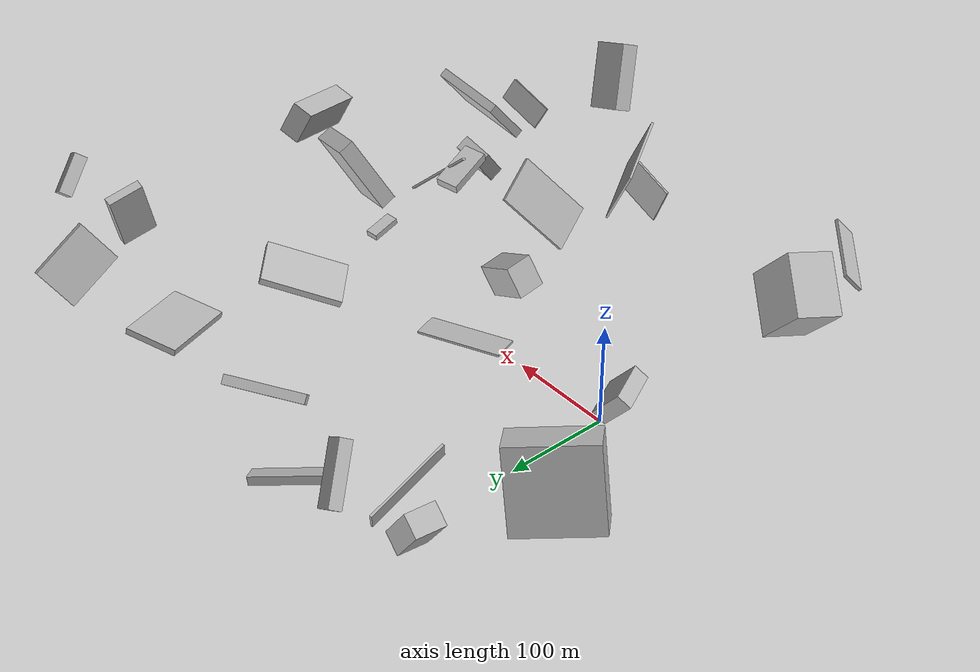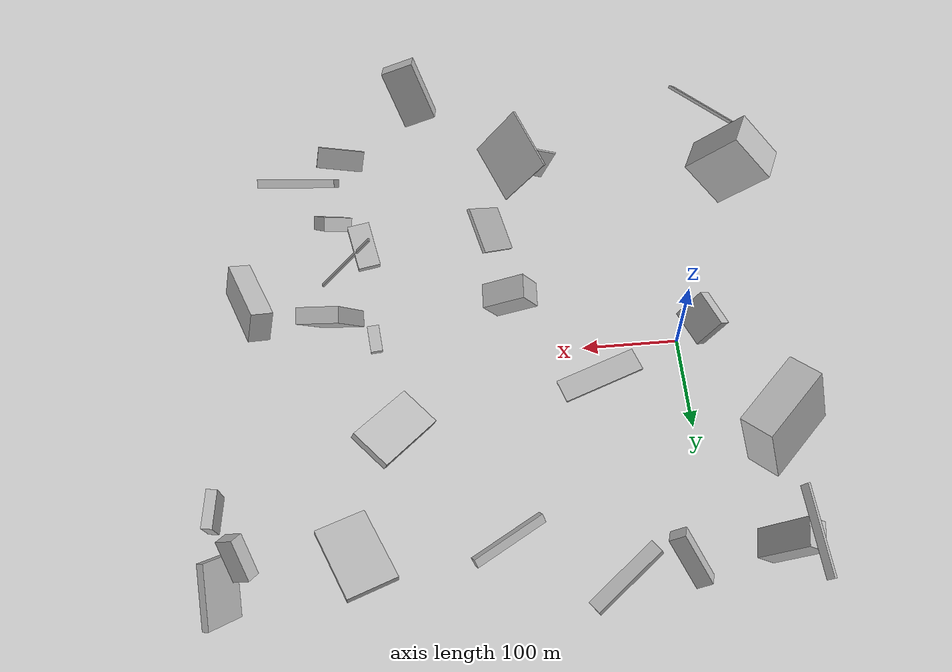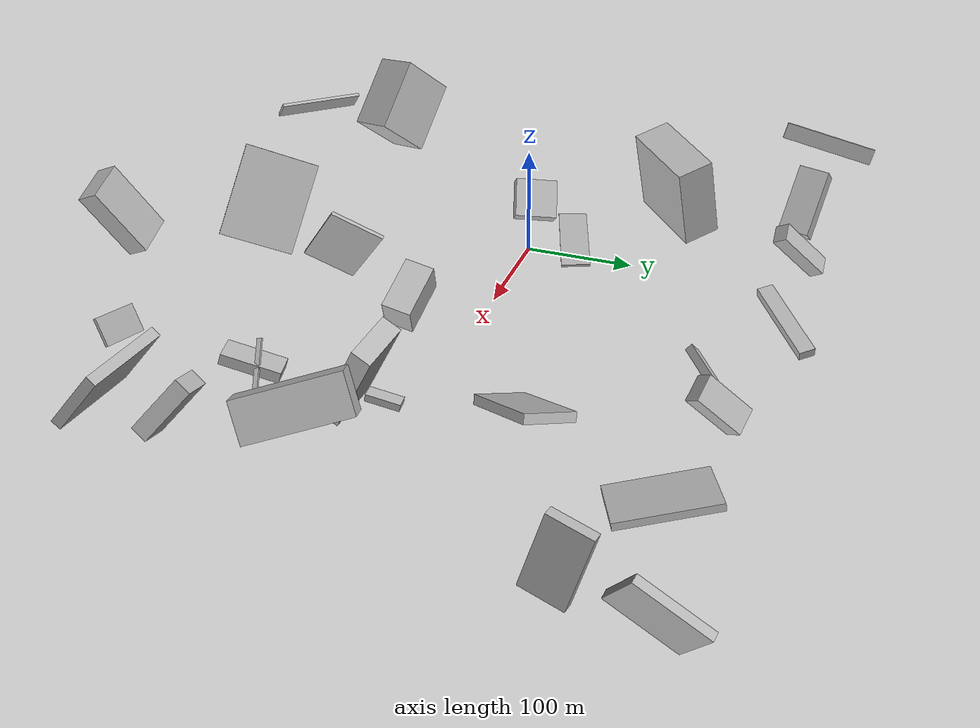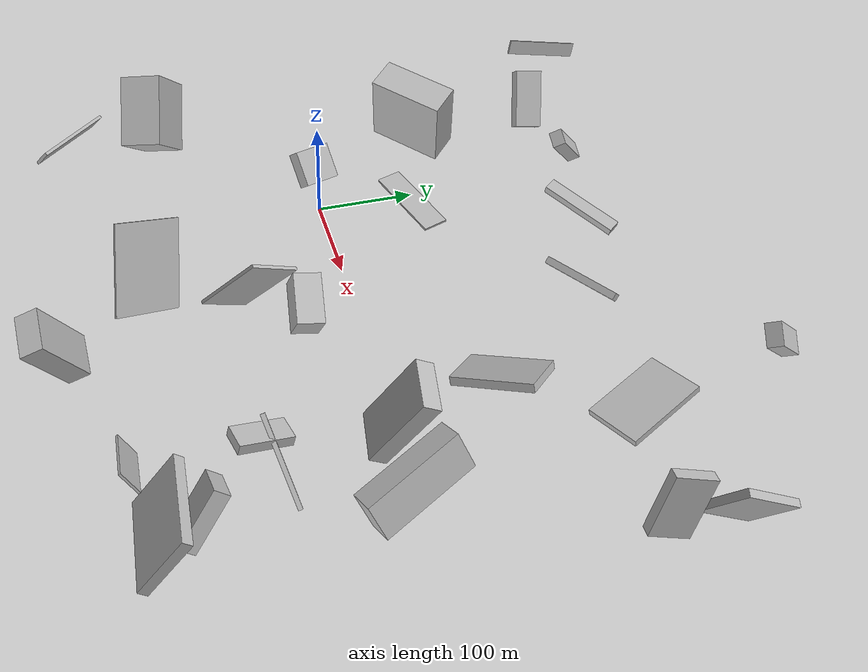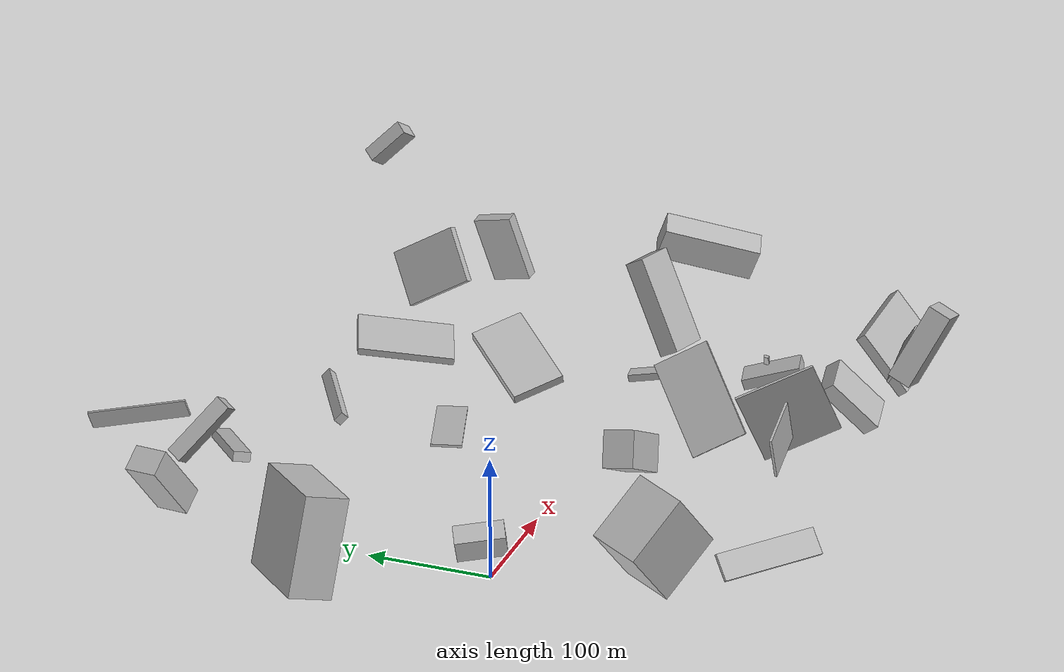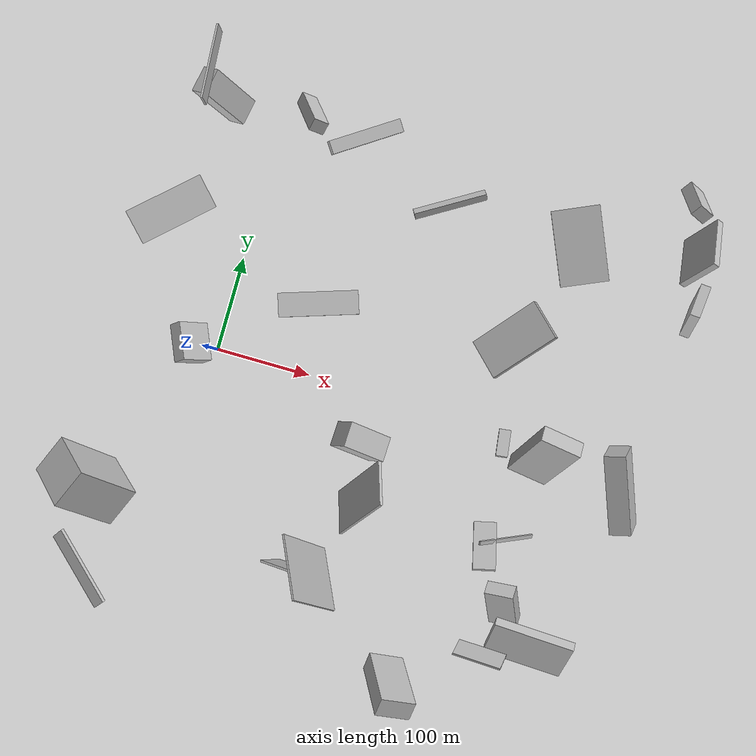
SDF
<sdf version="1.6">
 <world name="default">
  <scene>
   <sky><clouds><speed>12</speed></clouds></sky>
   <ambient>0.4 0.4 0.4 1</ambient>
   <background>0.7 0.7 0.7 1</background>
   <shadows>1</shadows>
  </scene>
  <gravity>0 0 -9.8066</gravity>
  <magnetic_field>6e-06 2.3e-05 -4.2e-05</magnetic_field>
  <physics default="0" name="default_physics" type="ode">
   <ode>
    <solver>
     <type>quick</type>
     <iters>10</iters>
     <sor>1.0</sor>
     <use_dynamic_moi_rescaling>0</use_dynamic_moi_rescaling>
    </solver>
    <constraints>
     <cfm>0</cfm>
     <erp>0.2</erp>
     <contact_max_correcting_vel>100</contact_max_correcting_vel>
     <contact_surface_layer>0.001</contact_surface_layer>
    </constraints>
   </ode>
   <max_step_size>0.004</max_step_size>
   <real_time_factor>1</real_time_factor>
   <real_time_update_rate>250</real_time_update_rate>
  </physics>
  <light name="sun" type="directional">
   <pose>0 0 10 0 0 0</pose>
   <diffuse>0.8 0.8 0.8 1</diffuse>
   <specular>0.2 0.2 0.2 1</specular>
   <attenuation>
    <range>1000</range>
    <constant>0.9</constant>
    <linear>0.01</linear>
    <quadratic>0.001</quadratic>
   </attenuation>
   <direction>-0.5 0.1 -0.9</direction>
  </light>
  <model name="building_1">
   <static>0</static>
   <pose>329.90800513584435 -10.809316812594739 80.87294061885481 1.737352601949279 0.49395553376554485 1.5031071792769912</pose>
   <link name="link">
    <gravity>0</gravity>
    <pose>0 0 21.0 0 0 0</pose>
    <collision name="collision"><geometry><box><size>16 80 42</size></box></geometry></collision>
    <visual name="visual">
     <cast_shadows>0</cast_shadows>
     <geometry><box><size>16 80 42</size></box></geometry>
     <material>
      <script>
       <uri>model://HANNAS_wall/materials/scripts</uri>
       <uri>model://HANNAS_wall/materials/textures</uri>
       <name>vrc/HANNAS_wall</name>
      </script>
     </material>
    </visual>
   </link>
  </model>
  <model name="building_2">
   <static>0</static>
   <pose>95.00903653180961 70.89860236958162 71.8476224932375 -3.05506962312573 -0.02492782396366697 1.887780743943032</pose>
   <link name="link">
    <gravity>0</gravity>
    <pose>0 0 1.0 0 0 0</pose>
    <collision name="collision"><geometry><box><size>24 80 2</size></box></geometry></collision>
    <visual name="visual">
     <cast_shadows>0</cast_shadows>
     <geometry><box><size>24 80 2</size></box></geometry>
     <material>
      <script>
       <uri>model://HANNAS_wall/materials/scripts</uri>
       <uri>model://HANNAS_wall/materials/textures</uri>
       <name>vrc/HANNAS_wall</name>
      </script>
     </material>
    </visual>
   </link>
  </model>
  <model name="building_3">
   <static>0</static>
   <pose>-29.297116245525455 17.225520681868176 40.2441982888937 -1.3885162430066547 -0.8674592865368379 -2.860277003758026</pose>
   <link name="link">
    <gravity>0</gravity>
    <pose>0 0 19.5 0 0 0</pose>
    <collision name="collision"><geometry><box><size>36 15 39</size></box></geometry></collision>
    <visual name="visual">
     <cast_shadows>0</cast_shadows>
     <geometry><box><size>36 15 39</size></box></geometry>
     <material>
      <script>
       <uri>model://HANNAS_wall/materials/scripts</uri>
       <uri>model://HANNAS_wall/materials/textures</uri>
       <name>vrc/HANNAS_wall</name>
      </script>
     </material>
    </visual>
   </link>
  </model>
  <model name="building_4">
   <static>0</static>
   <pose>160.02676553374008 -182.78180300238304 98.30864568359465 1.947775311273706 -0.3954666763921344 -1.0991421708551952</pose>
   <link name="link">
    <gravity>0</gravity>
    <pose>0 0 1.0 0 0 0</pose>
    <collision name="collision"><geometry><box><size>64 80 2</size></box></geometry></collision>
    <visual name="visual">
     <cast_shadows>0</cast_shadows>
     <geometry><box><size>64 80 2</size></box></geometry>
     <material>
      <script>
       <uri>model://HANNAS_wall/materials/scripts</uri>
       <uri>model://HANNAS_wall/materials/textures</uri>
       <name>vrc/HANNAS_wall</name>
      </script>
     </material>
    </visual>
   </link>
  </model>
  <model name="building_5">
   <static>0</static>
   <pose>195.94444986181531 207.20769828294428 28.41064782264114 -2.374106420908014 -0.02797874172333606 0.5345327241297821</pose>
   <link name="link">
    <gravity>0</gravity>
    <pose>0 0 4.5 0 0 0</pose>
    <collision name="collision"><geometry><box><size>77 7 9</size></box></geometry></collision>
    <visual name="visual">
     <cast_shadows>0</cast_shadows>
     <geometry><box><size>77 7 9</size></box></geometry>
     <material>
      <script>
       <uri>model://HANNAS_wall/materials/scripts</uri>
       <uri>model://HANNAS_wall/materials/textures</uri>
       <name>vrc/HANNAS_wall</name>
      </script>
     </material>
    </visual>
   </link>
  </model>
  <model name="building_6">
   <static>0</static>
   <pose>430.77150481140234 -19.941345104115882 82.67523543448954 0.39359610568665027 0.26489576343799165 -1.1826143179950905</pose>
   <link name="link">
    <gravity>0</gravity>
    <pose>0 0 16.0 0 0 0</pose>
    <collision name="collision"><geometry><box><size>80 21 32</size></box></geometry></collision>
    <visual name="visual">
     <cast_shadows>0</cast_shadows>
     <geometry><box><size>80 21 32</size></box></geometry>
     <material>
      <script>
       <uri>model://HANNAS_wall/materials/scripts</uri>
       <uri>model://HANNAS_wall/materials/textures</uri>
       <name>vrc/HANNAS_wall</name>
      </script>
     </material>
    </visual>
   </link>
  </model>
  <model name="building_7">
   <static>0</static>
   <pose>-48.00003590337795 150.99986284940232 50.0030438309629 1.4498633754026653 0.24340460655470883 -0.8292011561008751</pose>
   <link name="link">
    <gravity>0</gravity>
    <pose>0 0 40.0 0 0 0</pose>
    <collision name="collision"><geometry><box><size>35 80 80</size></box></geometry></collision>
    <visual name="visual">
     <cast_shadows>0</cast_shadows>
     <geometry><box><size>35 80 80</size></box></geometry>
     <material>
      <script>
       <uri>model://HANNAS_wall/materials/scripts</uri>
       <uri>model://HANNAS_wall/materials/textures</uri>
       <name>vrc/HANNAS_wall</name>
      </script>
     </material>
    </visual>
   </link>
  </model>
  <model name="building_8">
   <static>0</static>
   <pose>150.70685332312829 -47.947107122268235 46.19728861829351 2.073802970334203 0.1817206516197839 1.5350852599264395</pose>
   <link name="link">
    <gravity>0</gravity>
    <pose>0 0 24.0 0 0 0</pose>
    <collision name="collision"><geometry><box><size>26 30 48</size></box></geometry></collision>
    <visual name="visual">
     <cast_shadows>0</cast_shadows>
     <geometry><box><size>26 30 48</size></box></geometry>
     <material>
      <script>
       <uri>model://HANNAS_wall/materials/scripts</uri>
       <uri>model://HANNAS_wall/materials/textures</uri>
       <name>vrc/HANNAS_wall</name>
      </script>
     </material>
    </visual>
   </link>
  </model>
  <model name="building_9">
   <static>0</static>
   <pose>-60.37157942290014 -245.03760636748157 86.86937776420953 0.7569636172918126 0.044634265820007256 2.3922833848760274</pose>
   <link name="link">
    <gravity>0</gravity>
    <pose>0 0 10.5 0 0 0</pose>
    <collision name="collision"><geometry><box><size>80 3 21</size></box></geometry></collision>
    <visual name="visual">
     <cast_shadows>0</cast_shadows>
     <geometry><box><size>80 3 21</size></box></geometry>
     <material>
      <script>
       <uri>model://HANNAS_wall/materials/scripts</uri>
       <uri>model://HANNAS_wall/materials/textures</uri>
       <name>vrc/HANNAS_wall</name>
      </script>
     </material>
    </visual>
   </link>
  </model>
  <model name="building_10">
   <static>0</static>
   <pose>469.3416264179283 243.79927034340855 39.1437952666406 2.546835266486971 0.3655285826839762 -0.2311839891033763</pose>
   <link name="link">
    <gravity>0</gravity>
    <pose>0 0 24.0 0 0 0</pose>
    <collision name="collision"><geometry><box><size>7 61 48</size></box></geometry></collision>
    <visual name="visual">
     <cast_shadows>0</cast_shadows>
     <geometry><box><size>7 61 48</size></box></geometry>
     <material>
      <script>
       <uri>model://HANNAS_wall/materials/scripts</uri>
       <uri>model://HANNAS_wall/materials/textures</uri>
       <name>vrc/HANNAS_wall</name>
      </script>
     </material>
    </visual>
   </link>
  </model>
  <model name="building_11">
   <static>0</static>
   <pose>389.06430903590183 -219.81874574534987 33.884191400139514 0.6780102449910568 0.061928327125135206 3.1053032029636856</pose>
   <link name="link">
    <gravity>0</gravity>
    <pose>0 0 29.0 0 0 0</pose>
    <collision name="collision"><geometry><box><size>80 9 58</size></box></geometry></collision>
    <visual name="visual">
     <cast_shadows>0</cast_shadows>
     <geometry><box><size>80 9 58</size></box></geometry>
     <material>
      <script>
       <uri>model://HANNAS_wall/materials/scripts</uri>
       <uri>model://HANNAS_wall/materials/textures</uri>
       <name>vrc/HANNAS_wall</name>
      </script>
     </material>
    </visual>
   </link>
  </model>
  <model name="building_12">
   <static>0</static>
   <pose>311.59296390630004 0.46082026925230024 27.193678434873792 0.19006734849273954 1.3591105600785003 -1.270418458911421</pose>
   <link name="link">
    <gravity>0</gravity>
    <pose>0 0 14.0 0 0 0</pose>
    <collision name="collision"><geometry><box><size>6 12 28</size></box></geometry></collision>
    <visual name="visual">
     <cast_shadows>0</cast_shadows>
     <geometry><box><size>6 12 28</size></box></geometry>
     <material>
      <script>
       <uri>model://HANNAS_wall/materials/scripts</uri>
       <uri>model://HANNAS_wall/materials/textures</uri>
       <name>vrc/HANNAS_wall</name>
      </script>
     </material>
    </visual>
   </link>
  </model>
  <model name="building_13">
   <static>0</static>
   <pose>244.5488412653589 -260.3221696941627 128.60512089387518 1.9197135740309905 -0.4099037925692693 1.4750089858709963</pose>
   <link name="link">
    <gravity>0</gravity>
    <pose>0 0 17.0 0 0 0</pose>
    <collision name="collision"><geometry><box><size>19 63 34</size></box></geometry></collision>
    <visual name="visual">
     <cast_shadows>0</cast_shadows>
     <geometry><box><size>19 63 34</size></box></geometry>
     <material>
      <script>
       <uri>model://HANNAS_wall/materials/scripts</uri>
       <uri>model://HANNAS_wall/materials/textures</uri>
       <name>vrc/HANNAS_wall</name>
      </script>
     </material>
    </visual>
   </link>
  </model>
  <model name="building_14">
   <static>0</static>
   <pose>87.15495053539642 260.575380023522 24.232452253454515 -2.237730595750645 1.28955901808731 3.092113136667247</pose>
   <link name="link">
    <gravity>0</gravity>
    <pose>0 0 7.0 0 0 0</pose>
    <collision name="collision"><geometry><box><size>8 80 14</size></box></geometry></collision>
    <visual name="visual">
     <cast_shadows>0</cast_shadows>
     <geometry><box><size>8 80 14</size></box></geometry>
     <material>
      <script>
       <uri>model://HANNAS_wall/materials/scripts</uri>
       <uri>model://HANNAS_wall/materials/textures</uri>
       <name>vrc/HANNAS_wall</name>
      </script>
     </material>
    </visual>
   </link>
  </model>
  <model name="building_15">
   <static>0</static>
   <pose>420.311829146929 248.16120815180014 146.37723787213915 0.9163245177646661 0.5287172756963822 -2.19919127634928</pose>
   <link name="link">
    <gravity>0</gravity>
    <pose>0 0 9.0 0 0 0</pose>
    <collision name="collision"><geometry><box><size>12 37 18</size></box></geometry></collision>
    <visual name="visual">
     <cast_shadows>0</cast_shadows>
     <geometry><box><size>12 37 18</size></box></geometry>
     <material>
      <script>
       <uri>model://HANNAS_wall/materials/scripts</uri>
       <uri>model://HANNAS_wall/materials/textures</uri>
       <name>vrc/HANNAS_wall</name>
      </script>
     </material>
    </visual>
   </link>
  </model>
  <model name="building_16">
   <static>0</static>
   <pose>180.5028969524875 -82.95926841333022 71.08884517170492 -0.7712972349611128 0.8349120017819928 -2.1752254818072223</pose>
   <link name="link">
    <gravity>0</gravity>
    <pose>0 0 23.0 0 0 0</pose>
    <collision name="collision"><geometry><box><size>79 3 46</size></box></geometry></collision>
    <visual name="visual">
     <cast_shadows>0</cast_shadows>
     <geometry><box><size>79 3 46</size></box></geometry>
     <material>
      <script>
       <uri>model://HANNAS_wall/materials/scripts</uri>
       <uri>model://HANNAS_wall/materials/textures</uri>
       <name>vrc/HANNAS_wall</name>
      </script>
     </material>
    </visual>
   </link>
  </model>
  <model name="building_17">
   <static>0</static>
   <pose>360.4370823305957 216.79522561483526 15.350876653753623 2.321776427921207 -1.3654952997513645 -1.9139397941229428</pose>
   <link name="link">
    <gravity>0</gravity>
    <pose>0 0 25.5 0 0 0</pose>
    <collision name="collision"><geometry><box><size>6 80 51</size></box></geometry></collision>
    <visual name="visual">
     <cast_shadows>0</cast_shadows>
     <geometry><box><size>6 80 51</size></box></geometry>
     <material>
      <script>
       <uri>model://HANNAS_wall/materials/scripts</uri>
       <uri>model://HANNAS_wall/materials/textures</uri>
       <name>vrc/HANNAS_wall</name>
      </script>
     </material>
    </visual>
   </link>
  </model>
  <model name="building_18">
   <static>0</static>
   <pose>341.38529689671276 -218.0052952995006 71.48303644785311 2.617417038607711 0.9998483005683246 1.1286641401020876</pose>
   <link name="link">
    <gravity>0</gravity>
    <pose>0 0 1.0 0 0 0</pose>
    <collision name="collision"><geometry><box><size>23 49 2</size></box></geometry></collision>
    <visual name="visual">
     <cast_shadows>0</cast_shadows>
     <geometry><box><size>23 49 2</size></box></geometry>
     <material>
      <script>
       <uri>model://HANNAS_wall/materials/scripts</uri>
       <uri>model://HANNAS_wall/materials/textures</uri>
       <name>vrc/HANNAS_wall</name>
      </script>
     </material>
    </visual>
   </link>
  </model>
  <model name="building_19">
   <static>0</static>
   <pose>349.1385182041961 -156.7780501507372 37.245529131755134 2.4486365425796146 -0.32322202929188054 0.12301805902053614</pose>
   <link name="link">
    <gravity>0</gravity>
    <pose>0 0 27.5 0 0 0</pose>
    <collision name="collision"><geometry><box><size>30 15 55</size></box></geometry></collision>
    <visual name="visual">
     <cast_shadows>0</cast_shadows>
     <geometry><box><size>30 15 55</size></box></geometry>
     <material>
      <script>
       <uri>model://HANNAS_wall/materials/scripts</uri>
       <uri>model://HANNAS_wall/materials/textures</uri>
       <name>vrc/HANNAS_wall</name>
      </script>
     </material>
    </visual>
   </link>
  </model>
  <model name="building_20">
   <static>0</static>
   <pose>459.56281026392696 150.99500541202258 53.16187282269867 2.55301304027323 -1.2676825980439834 2.032268120103689</pose>
   <link name="link">
    <gravity>0</gravity>
    <pose>0 0 17.5 0 0 0</pose>
    <collision name="collision"><geometry><box><size>58 10 35</size></box></geometry></collision>
    <visual name="visual">
     <cast_shadows>0</cast_shadows>
     <geometry><box><size>58 10 35</size></box></geometry>
     <material>
      <script>
       <uri>model://HANNAS_wall/materials/scripts</uri>
       <uri>model://HANNAS_wall/materials/textures</uri>
       <name>vrc/HANNAS_wall</name>
      </script>
     </material>
    </visual>
   </link>
  </model>
  <model name="building_21">
   <static>0</static>
   <pose>-36.42741893226397 242.3407258842573 40.122540386406094 0.6412785886711686 -0.06399527441426571 -1.7491382913122682</pose>
   <link name="link">
    <gravity>0</gravity>
    <pose>0 0 30.0 0 0 0</pose>
    <collision name="collision"><geometry><box><size>27 21 60</size></box></geometry></collision>
    <visual name="visual">
     <cast_shadows>0</cast_shadows>
     <geometry><box><size>27 21 60</size></box></geometry>
     <material>
      <script>
       <uri>model://HANNAS_wall/materials/scripts</uri>
       <uri>model://HANNAS_wall/materials/textures</uri>
       <name>vrc/HANNAS_wall</name>
      </script>
     </material>
    </visual>
   </link>
  </model>
  <model name="building_22">
   <static>0</static>
   <pose>-49.25203102047506 -161.41559522048234 74.68339690848045 0.20390899948115448 -0.6983577297845606 -0.5577058133472911</pose>
   <link name="link">
    <gravity>0</gravity>
    <pose>0 0 34.0 0 0 0</pose>
    <collision name="collision"><geometry><box><size>56 41 68</size></box></geometry></collision>
    <visual name="visual">
     <cast_shadows>0</cast_shadows>
     <geometry><box><size>56 41 68</size></box></geometry>
     <material>
      <script>
       <uri>model://HANNAS_wall/materials/scripts</uri>
       <uri>model://HANNAS_wall/materials/textures</uri>
       <name>vrc/HANNAS_wall</name>
      </script>
     </material>
    </visual>
   </link>
  </model>
  <model name="building_23">
   <static>0</static>
   <pose>34.6290863375968 249.25499479486768 59.15568005679232 0.8005513756312305 0.7836591490072472 2.222993977193639</pose>
   <link name="link">
    <gravity>0</gravity>
    <pose>0 0 6.5 0 0 0</pose>
    <collision name="collision"><geometry><box><size>57 16 13</size></box></geometry></collision>
    <visual name="visual">
     <cast_shadows>0</cast_shadows>
     <geometry><box><size>57 16 13</size></box></geometry>
     <material>
      <script>
       <uri>model://HANNAS_wall/materials/scripts</uri>
       <uri>model://HANNAS_wall/materials/textures</uri>
       <name>vrc/HANNAS_wall</name>
      </script>
     </material>
    </visual>
   </link>
  </model>
  <model name="building_24">
   <static>0</static>
   <pose>309.59638570232687 -120.50592321133263 45.949207468301516 1.4065687660275428 -1.2665675385217914 1.959407571261352</pose>
   <link name="link">
    <gravity>0</gravity>
    <pose>0 0 11.5 0 0 0</pose>
    <collision name="collision"><geometry><box><size>9 48 23</size></box></geometry></collision>
    <visual name="visual">
     <cast_shadows>0</cast_shadows>
     <geometry><box><size>9 48 23</size></box></geometry>
     <material>
      <script>
       <uri>model://HANNAS_wall/materials/scripts</uri>
       <uri>model://HANNAS_wall/materials/textures</uri>
       <name>vrc/HANNAS_wall</name>
      </script>
     </material>
    </visual>
   </link>
  </model>
  <model name="building_25">
   <static>0</static>
   <pose>118.50998910368207 -184.84366669652422 78.21894437471488 1.1867395991819227 0.004832267107791591 1.5733697352358547</pose>
   <link name="link">
    <gravity>0</gravity>
    <pose>0 0 20.5 0 0 0</pose>
    <collision name="collision"><geometry><box><size>2 40 41</size></box></geometry></collision>
    <visual name="visual">
     <cast_shadows>0</cast_shadows>
     <geometry><box><size>2 40 41</size></box></geometry>
     <material>
      <script>
       <uri>model://HANNAS_wall/materials/scripts</uri>
       <uri>model://HANNAS_wall/materials/textures</uri>
       <name>vrc/HANNAS_wall</name>
      </script>
     </material>
    </visual>
   </link>
  </model>
  <model name="building_26">
   <static>0</static>
   <pose>294.0569090058989 91.4095687798899 37.95649168723449 2.875476572256146 -0.3484577969305285 0.860483283991041</pose>
   <link name="link">
    <gravity>0</gravity>
    <pose>0 0 4.0 0 0 0</pose>
    <collision name="collision"><geometry><box><size>77 44 8</size></box></geometry></collision>
    <visual name="visual">
     <cast_shadows>0</cast_shadows>
     <geometry><box><size>77 44 8</size></box></geometry>
     <material>
      <script>
       <uri>model://HANNAS_wall/materials/scripts</uri>
       <uri>model://HANNAS_wall/materials/textures</uri>
       <name>vrc/HANNAS_wall</name>
      </script>
     </material>
    </visual>
   </link>
  </model>
  <model name="building_27">
   <static>0</static>
   <pose>340.7409603116704 -106.21937550921335 35.52288356026246 -0.3197419607904398 -0.7507817300348092 -2.859000294473125</pose>
   <link name="link">
    <gravity>0</gravity>
    <pose>0 0 1.0 0 0 0</pose>
    <collision name="collision"><geometry><box><size>80 4 2</size></box></geometry></collision>
    <visual name="visual">
     <cast_shadows>0</cast_shadows>
     <geometry><box><size>80 4 2</size></box></geometry>
     <material>
      <script>
       <uri>model://HANNAS_wall/materials/scripts</uri>
       <uri>model://HANNAS_wall/materials/textures</uri>
       <name>vrc/HANNAS_wall</name>
      </script>
     </material>
    </visual>
   </link>
  </model>
  <model name="building_28">
   <static>0</static>
   <pose>-60.05676644995375 258.86456408977887 114.68057577240862 -0.17672604309401246 0.24826010254276148 1.691258097851109</pose>
   <link name="link">
    <gravity>0</gravity>
    <pose>0 0 7.0 0 0 0</pose>
    <collision name="collision"><geometry><box><size>80 2 14</size></box></geometry></collision>
    <visual name="visual">
     <cast_shadows>0</cast_shadows>
     <geometry><box><size>80 2 14</size></box></geometry>
     <material>
      <script>
       <uri>model://HANNAS_wall/materials/scripts</uri>
       <uri>model://HANNAS_wall/materials/textures</uri>
       <name>vrc/HANNAS_wall</name>
      </script>
     </material>
    </visual>
   </link>
  </model>
 </world>
</sdf>
